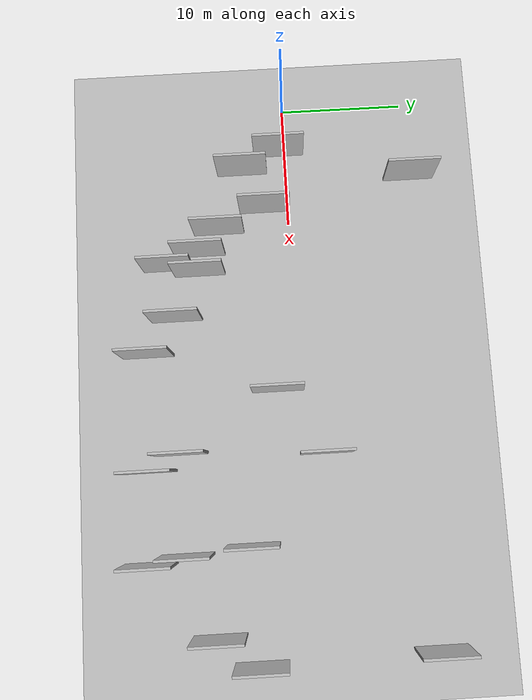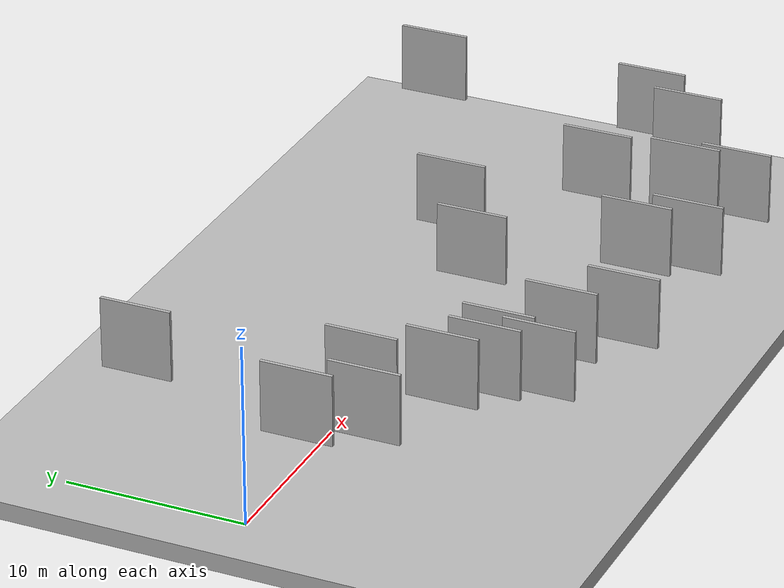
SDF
<?xml version="1.0" encoding="utf-8"?>

<sdf version="1.6">

   <world name="default">

      <gui fullscreen="0">

         <camera name="user_camera">

            <pose>-15 0 4.57585 0 0 0</pose>

            <view_controller>orbit</view_controller>

         </camera>

      </gui>

      <scene>

         <sky>

           <clouds>

             <speed>12</speed>

           </clouds>

         </sky>

         <ambient>0.4 0.4 0.4 1</ambient>

         <background>0.7 0.7 0.7 1</background>

         <shadows>1</shadows>

      </scene>

      <gravity>0 0 -9.8066</gravity>

      <magnetic_field>6e-06 2.3e-05 -4.2e-05</magnetic_field>

      <physics default="0" name="default_physics" type="ode">

         <ode>

            <solver>

               <type>quick</type>

               <iters>10</iters>

               <sor>1.0</sor>

               <use_dynamic_moi_rescaling>0</use_dynamic_moi_rescaling>

            </solver>

            <constraints>

               <cfm>0</cfm>

               <erp>0.2</erp>

               <contact_max_correcting_vel>100</contact_max_correcting_vel>

               <contact_surface_layer>0.001</contact_surface_layer>

            </constraints>

         </ode>

         <max_step_size>0.004</max_step_size>

         <real_time_factor>1</real_time_factor>

         <real_time_update_rate>250</real_time_update_rate>

      </physics>

      <light name="sun" type="directional">

         <cast_shadows>1</cast_shadows>

         <pose>0 0 10 0 0 0</pose>

         <diffuse>0.8 0.8 0.8 1</diffuse>

         <specular>0.2 0.2 0.2 1</specular>

         <attenuation>

            <range>1000</range>

            <constant>0.9</constant>

            <linear>0.01</linear>

            <quadratic>0.001</quadratic>

         </attenuation>

         <direction>-0.5 0.1 -0.9</direction>

      </light>

      <include>

         <name>ground_plane_1</name>

         <uri>model://HANNAS_ground_plane</uri>

         <pose>0 0 0  0 0 0</pose>

      </include>

      <include>

         <name>ground_plane_2</name>

         <uri>model://HANNAS_ground_plane</uri>

         <pose>100 0 0  0 0 0</pose>

      </include>

      <model name="HANNAS_wall_1">

         <static>1</static>

         <pose frame="">6.3646 -3.5503 2.5 0.000000 0.000000 1.570796</pose>

         <link name="link">

            <pose frame="">0 0 2.00 0 0 0</pose>

            <collision name="collision">

               <geometry>

                  <box>

                     <size>4.00 0.2 4.00</size>

                  </box>

               </geometry>

               <max_contacts>10</max_contacts>

               <surface>

                  <contact>

                     <ode/>

                  </contact>

                  <bounce/>

                  <friction>

                     <torsional>

                        <ode/>

                     </torsional>

                     <ode/>

                  </friction>

               </surface>

            </collision>

            <visual name="visual">

               <cast_shadows>0</cast_shadows>

               <geometry>

                  <box>

                     <size>4.00 0.2 4.00</size>

                  </box>

               </geometry>

               <material>

                  <script>

                     <uri>model://HANNAS_wall/materials/scripts</uri>

                     <uri>model://HANNAS_wall/materials/textures</uri>

                     <name>vrc/HANNAS_wall</name>

                  </script>

               </material>

            </visual>

            <self_collide>0</self_collide>

            <enable_wind>0</enable_wind>

            <kinematic>0</kinematic>

         </link>

      </model>

      <model name="HANNAS_wall_2">

         <static>1</static>

         <pose frame="">18.1929 -9.2385 2.5 0.000000 0.000000 1.570796</pose>

         <link name="link">

            <pose frame="">0 0 2.00 0 0 0</pose>

            <collision name="collision">

               <geometry>

                  <box>

                     <size>4.00 0.2 4.00</size>

                  </box>

               </geometry>

               <max_contacts>10</max_contacts>

               <surface>

                  <contact>

                     <ode/>

                  </contact>

                  <bounce/>

                  <friction>

                     <torsional>

                        <ode/>

                     </torsional>

                     <ode/>

                  </friction>

               </surface>

            </collision>

            <visual name="visual">

               <cast_shadows>0</cast_shadows>

               <geometry>

                  <box>

                     <size>4.00 0.2 4.00</size>

                  </box>

               </geometry>

               <material>

                  <script>

                     <uri>model://HANNAS_wall/materials/scripts</uri>

                     <uri>model://HANNAS_wall/materials/textures</uri>

                     <name>vrc/HANNAS_wall</name>

                  </script>

               </material>

            </visual>

            <self_collide>0</self_collide>

            <enable_wind>0</enable_wind>

            <kinematic>0</kinematic>

         </link>

      </model>

      <model name="HANNAS_wall_3">

         <static>1</static>

         <pose frame="">24.1748 -1.6012 2.5 0.000000 0.000000 1.570796</pose>

         <link name="link">

            <pose frame="">0 0 2.00 0 0 0</pose>

            <collision name="collision">

               <geometry>

                  <box>

                     <size>4.00 0.2 4.00</size>

                  </box>

               </geometry>

               <max_contacts>10</max_contacts>

               <surface>

                  <contact>

                     <ode/>

                  </contact>

                  <bounce/>

                  <friction>

                     <torsional>

                        <ode/>

                     </torsional>

                     <ode/>

                  </friction>

               </surface>

            </collision>

            <visual name="visual">

               <cast_shadows>0</cast_shadows>

               <geometry>

                  <box>

                     <size>4.00 0.2 4.00</size>

                  </box>

               </geometry>

               <material>

                  <script>

                     <uri>model://HANNAS_wall/materials/scripts</uri>

                     <uri>model://HANNAS_wall/materials/textures</uri>

                     <name>vrc/HANNAS_wall</name>

                  </script>

               </material>

            </visual>

            <self_collide>0</self_collide>

            <enable_wind>0</enable_wind>

            <kinematic>0</kinematic>

         </link>

      </model>

      <model name="HANNAS_wall_4">

         <static>1</static>

         <pose frame="">12.9888 -7.2146 2.5 0.000000 0.000000 1.570796</pose>

         <link name="link">

            <pose frame="">0 0 2.00 0 0 0</pose>

            <collision name="collision">

               <geometry>

                  <box>

                     <size>4.00 0.2 4.00</size>

                  </box>

               </geometry>

               <max_contacts>10</max_contacts>

               <surface>

                  <contact>

                     <ode/>

                  </contact>

                  <bounce/>

                  <friction>

                     <torsional>

                        <ode/>

                     </torsional>

                     <ode/>

                  </friction>

               </surface>

            </collision>

            <visual name="visual">

               <cast_shadows>0</cast_shadows>

               <geometry>

                  <box>

                     <size>4.00 0.2 4.00</size>

                  </box>

               </geometry>

               <material>

                  <script>

                     <uri>model://HANNAS_wall/materials/scripts</uri>

                     <uri>model://HANNAS_wall/materials/textures</uri>

                     <name>vrc/HANNAS_wall</name>

                  </script>

               </material>

            </visual>

            <self_collide>0</self_collide>

            <enable_wind>0</enable_wind>

            <kinematic>0</kinematic>

         </link>

      </model>

      <model name="HANNAS_wall_5">

         <static>1</static>

         <pose frame="">14.0566 -9.7447 2.5 0.000000 0.000000 1.570796</pose>

         <link name="link">

            <pose frame="">0 0 2.00 0 0 0</pose>

            <collision name="collision">

               <geometry>

                  <box>

                     <size>4.00 0.2 4.00</size>

                  </box>

               </geometry>

               <max_contacts>10</max_contacts>

               <surface>

                  <contact>

                     <ode/>

                  </contact>

                  <bounce/>

                  <friction>

                     <torsional>

                        <ode/>

                     </torsional>

                     <ode/>

                  </friction>

               </surface>

            </collision>

            <visual name="visual">

               <cast_shadows>0</cast_shadows>

               <geometry>

                  <box>

                     <size>4.00 0.2 4.00</size>

                  </box>

               </geometry>

               <material>

                  <script>

                     <uri>model://HANNAS_wall/materials/scripts</uri>

                     <uri>model://HANNAS_wall/materials/textures</uri>

                     <name>vrc/HANNAS_wall</name>

                  </script>

               </material>

            </visual>

            <self_collide>0</self_collide>

            <enable_wind>0</enable_wind>

            <kinematic>0</kinematic>

         </link>

      </model>

      <model name="HANNAS_wall_6">

         <static>1</static>

         <pose frame="">14.5924 -7.2852 2.5 0.000000 0.000000 1.570796</pose>

         <link name="link">

            <pose frame="">0 0 2.00 0 0 0</pose>

            <collision name="collision">

               <geometry>

                  <box>

                     <size>4.00 0.2 4.00</size>

                  </box>

               </geometry>

               <max_contacts>10</max_contacts>

               <surface>

                  <contact>

                     <ode/>

                  </contact>

                  <bounce/>

                  <friction>

                     <torsional>

                        <ode/>

                     </torsional>

                     <ode/>

                  </friction>

               </surface>

            </collision>

            <visual name="visual">

               <cast_shadows>0</cast_shadows>

               <geometry>

                  <box>

                     <size>4.00 0.2 4.00</size>

                  </box>

               </geometry>

               <material>

                  <script>

                     <uri>model://HANNAS_wall/materials/scripts</uri>

                     <uri>model://HANNAS_wall/materials/textures</uri>

                     <name>vrc/HANNAS_wall</name>

                  </script>

               </material>

            </visual>

            <self_collide>0</self_collide>

            <enable_wind>0</enable_wind>

            <kinematic>0</kinematic>

         </link>

      </model>

      <model name="HANNAS_wall_7">

         <static>1</static>

         <pose frame="">20.9524 -11.5685 2.5 0.000000 0.000000 1.570796</pose>

         <link name="link">

            <pose frame="">0 0 2.00 0 0 0</pose>

            <collision name="collision">

               <geometry>

                  <box>

                     <size>4.00 0.2 4.00</size>

                  </box>

               </geometry>

               <max_contacts>10</max_contacts>

               <surface>

                  <contact>

                     <ode/>

                  </contact>

                  <bounce/>

                  <friction>

                     <torsional>

                        <ode/>

                     </torsional>

                     <ode/>

                  </friction>

               </surface>

            </collision>

            <visual name="visual">

               <cast_shadows>0</cast_shadows>

               <geometry>

                  <box>

                     <size>4.00 0.2 4.00</size>

                  </box>

               </geometry>

               <material>

                  <script>

                     <uri>model://HANNAS_wall/materials/scripts</uri>

                     <uri>model://HANNAS_wall/materials/textures</uri>

                     <name>vrc/HANNAS_wall</name>

                  </script>

               </material>

            </visual>

            <self_collide>0</self_collide>

            <enable_wind>0</enable_wind>

            <kinematic>0</kinematic>

         </link>

      </model>

      <model name="HANNAS_wall_8">

         <static>1</static>

         <pose frame="">11.2541 -5.6298 2.5 0.000000 0.000000 1.570796</pose>

         <link name="link">

            <pose frame="">0 0 2.00 0 0 0</pose>

            <collision name="collision">

               <geometry>

                  <box>

                     <size>4.00 0.2 4.00</size>

                  </box>

               </geometry>

               <max_contacts>10</max_contacts>

               <surface>

                  <contact>

                     <ode/>

                  </contact>

                  <bounce/>

                  <friction>

                     <torsional>

                        <ode/>

                     </torsional>

                     <ode/>

                  </friction>

               </surface>

            </collision>

            <visual name="visual">

               <cast_shadows>0</cast_shadows>

               <geometry>

                  <box>

                     <size>4.00 0.2 4.00</size>

                  </box>

               </geometry>

               <material>

                  <script>

                     <uri>model://HANNAS_wall/materials/scripts</uri>

                     <uri>model://HANNAS_wall/materials/textures</uri>

                     <name>vrc/HANNAS_wall</name>

                  </script>

               </material>

            </visual>

            <self_collide>0</self_collide>

            <enable_wind>0</enable_wind>

            <kinematic>0</kinematic>

         </link>

      </model>

      <model name="HANNAS_wall_9">

         <static>1</static>

         <pose frame="">28.6543 -9.2042 2.5 0.000000 0.000000 1.570796</pose>

         <link name="link">

            <pose frame="">0 0 2.00 0 0 0</pose>

            <collision name="collision">

               <geometry>

                  <box>

                     <size>4.00 0.2 4.00</size>

                  </box>

               </geometry>

               <max_contacts>10</max_contacts>

               <surface>

                  <contact>

                     <ode/>

                  </contact>

                  <bounce/>

                  <friction>

                     <torsional>

                        <ode/>

                     </torsional>

                     <ode/>

                  </friction>

               </surface>

            </collision>

            <visual name="visual">

               <cast_shadows>0</cast_shadows>

               <geometry>

                  <box>

                     <size>4.00 0.2 4.00</size>

                  </box>

               </geometry>

               <material>

                  <script>

                     <uri>model://HANNAS_wall/materials/scripts</uri>

                     <uri>model://HANNAS_wall/materials/textures</uri>

                     <name>vrc/HANNAS_wall</name>

                  </script>

               </material>

            </visual>

            <self_collide>0</self_collide>

            <enable_wind>0</enable_wind>

            <kinematic>0</kinematic>

         </link>

      </model>

      <model name="HANNAS_wall_10">

         <static>1</static>

         <pose frame="">9.6110 -1.8973 2.5 0.000000 0.000000 1.570796</pose>

         <link name="link">

            <pose frame="">0 0 2.00 0 0 0</pose>

            <collision name="collision">

               <geometry>

                  <box>

                     <size>4.00 0.2 4.00</size>

                  </box>

               </geometry>

               <max_contacts>10</max_contacts>

               <surface>

                  <contact>

                     <ode/>

                  </contact>

                  <bounce/>

                  <friction>

                     <torsional>

                        <ode/>

                     </torsional>

                     <ode/>

                  </friction>

               </surface>

            </collision>

            <visual name="visual">

               <cast_shadows>0</cast_shadows>

               <geometry>

                  <box>

                     <size>4.00 0.2 4.00</size>

                  </box>

               </geometry>

               <material>

                  <script>

                     <uri>model://HANNAS_wall/materials/scripts</uri>

                     <uri>model://HANNAS_wall/materials/textures</uri>

                     <name>vrc/HANNAS_wall</name>

                  </script>

               </material>

            </visual>

            <self_collide>0</self_collide>

            <enable_wind>0</enable_wind>

            <kinematic>0</kinematic>

         </link>

      </model>

      <model name="HANNAS_wall_11">

         <static>1</static>

         <pose frame="">4.8964 -0.5349 2.5 0.000000 0.000000 1.570796</pose>

         <link name="link">

            <pose frame="">0 0 2.00 0 0 0</pose>

            <collision name="collision">

               <geometry>

                  <box>

                     <size>4.00 0.2 4.00</size>

                  </box>

               </geometry>

               <max_contacts>10</max_contacts>

               <surface>

                  <contact>

                     <ode/>

                  </contact>

                  <bounce/>

                  <friction>

                     <torsional>

                        <ode/>

                     </torsional>

                     <ode/>

                  </friction>

               </surface>

            </collision>

            <visual name="visual">

               <cast_shadows>0</cast_shadows>

               <geometry>

                  <box>

                     <size>4.00 0.2 4.00</size>

                  </box>

               </geometry>

               <material>

                  <script>

                     <uri>model://HANNAS_wall/materials/scripts</uri>

                     <uri>model://HANNAS_wall/materials/textures</uri>

                     <name>vrc/HANNAS_wall</name>

                  </script>

               </material>

            </visual>

            <self_collide>0</self_collide>

            <enable_wind>0</enable_wind>

            <kinematic>0</kinematic>

         </link>

      </model>

      <model name="HANNAS_wall_12">

         <static>1</static>

         <pose frame="">43.8986 9.3973 2.5 0.000000 0.000000 1.570796</pose>

         <link name="link">

            <pose frame="">0 0 2.00 0 0 0</pose>

            <collision name="collision">

               <geometry>

                  <box>

                     <size>4.00 0.2 4.00</size>

                  </box>

               </geometry>

               <max_contacts>10</max_contacts>

               <surface>

                  <contact>

                     <ode/>

                  </contact>

                  <bounce/>

                  <friction>

                     <torsional>

                        <ode/>

                     </torsional>

                     <ode/>

                  </friction>

               </surface>

            </collision>

            <visual name="visual">

               <cast_shadows>0</cast_shadows>

               <geometry>

                  <box>

                     <size>4.00 0.2 4.00</size>

                  </box>

               </geometry>

               <material>

                  <script>

                     <uri>model://HANNAS_wall/materials/scripts</uri>

                     <uri>model://HANNAS_wall/materials/textures</uri>

                     <name>vrc/HANNAS_wall</name>

                  </script>

               </material>

            </visual>

            <self_collide>0</self_collide>

            <enable_wind>0</enable_wind>

            <kinematic>0</kinematic>

         </link>

      </model>

      <model name="HANNAS_wall_13">

         <static>1</static>

         <pose frame="">42.1802 -6.8385 2.5 0.000000 0.000000 1.570796</pose>

         <link name="link">

            <pose frame="">0 0 2.00 0 0 0</pose>

            <collision name="collision">

               <geometry>

                  <box>

                     <size>4.00 0.2 4.00</size>

                  </box>

               </geometry>

               <max_contacts>10</max_contacts>

               <surface>

                  <contact>

                     <ode/>

                  </contact>

                  <bounce/>

                  <friction>

                     <torsional>

                        <ode/>

                     </torsional>

                     <ode/>

                  </friction>

               </surface>

            </collision>

            <visual name="visual">

               <cast_shadows>0</cast_shadows>

               <geometry>

                  <box>

                     <size>4.00 0.2 4.00</size>

                  </box>

               </geometry>

               <material>

                  <script>

                     <uri>model://HANNAS_wall/materials/scripts</uri>

                     <uri>model://HANNAS_wall/materials/textures</uri>

                     <name>vrc/HANNAS_wall</name>

                  </script>

               </material>

            </visual>

            <self_collide>0</self_collide>

            <enable_wind>0</enable_wind>

            <kinematic>0</kinematic>

         </link>

      </model>

      <model name="HANNAS_wall_14">

         <static>1</static>

         <pose frame="">29.8864 -11.6411 2.5 0.000000 0.000000 1.570796</pose>

         <link name="link">

            <pose frame="">0 0 2.00 0 0 0</pose>

            <collision name="collision">

               <geometry>

                  <box>

                     <size>4.00 0.2 4.00</size>

                  </box>

               </geometry>

               <max_contacts>10</max_contacts>

               <surface>

                  <contact>

                     <ode/>

                  </contact>

                  <bounce/>

                  <friction>

                     <torsional>

                        <ode/>

                     </torsional>

                     <ode/>

                  </friction>

               </surface>

            </collision>

            <visual name="visual">

               <cast_shadows>0</cast_shadows>

               <geometry>

                  <box>

                     <size>4.00 0.2 4.00</size>

                  </box>

               </geometry>

               <material>

                  <script>

                     <uri>model://HANNAS_wall/materials/scripts</uri>

                     <uri>model://HANNAS_wall/materials/textures</uri>

                     <name>vrc/HANNAS_wall</name>

                  </script>

               </material>

            </visual>

            <self_collide>0</self_collide>

            <enable_wind>0</enable_wind>

            <kinematic>0</kinematic>

         </link>

      </model>

      <model name="HANNAS_wall_15">

         <static>1</static>

         <pose frame="">36.7092 -11.7967 2.5 0.000000 0.000000 1.570796</pose>

         <link name="link">

            <pose frame="">0 0 2.00 0 0 0</pose>

            <collision name="collision">

               <geometry>

                  <box>

                     <size>4.00 0.2 4.00</size>

                  </box>

               </geometry>

               <max_contacts>10</max_contacts>

               <surface>

                  <contact>

                     <ode/>

                  </contact>

                  <bounce/>

                  <friction>

                     <torsional>

                        <ode/>

                     </torsional>

                     <ode/>

                  </friction>

               </surface>

            </collision>

            <visual name="visual">

               <cast_shadows>0</cast_shadows>

               <geometry>

                  <box>

                     <size>4.00 0.2 4.00</size>

                  </box>

               </geometry>

               <material>

                  <script>

                     <uri>model://HANNAS_wall/materials/scripts</uri>

                     <uri>model://HANNAS_wall/materials/textures</uri>

                     <name>vrc/HANNAS_wall</name>

                  </script>

               </material>

            </visual>

            <self_collide>0</self_collide>

            <enable_wind>0</enable_wind>

            <kinematic>0</kinematic>

         </link>

      </model>

      <model name="HANNAS_wall_16">

         <static>1</static>

         <pose frame="">35.7289 -4.0509 2.5 0.000000 0.000000 1.570796</pose>

         <link name="link">

            <pose frame="">0 0 2.00 0 0 0</pose>

            <collision name="collision">

               <geometry>

                  <box>

                     <size>4.00 0.2 4.00</size>

                  </box>

               </geometry>

               <max_contacts>10</max_contacts>

               <surface>

                  <contact>

                     <ode/>

                  </contact>

                  <bounce/>

                  <friction>

                     <torsional>

                        <ode/>

                     </torsional>

                     <ode/>

                  </friction>

               </surface>

            </collision>

            <visual name="visual">

               <cast_shadows>0</cast_shadows>

               <geometry>

                  <box>

                     <size>4.00 0.2 4.00</size>

                  </box>

               </geometry>

               <material>

                  <script>

                     <uri>model://HANNAS_wall/materials/scripts</uri>

                     <uri>model://HANNAS_wall/materials/textures</uri>

                     <name>vrc/HANNAS_wall</name>

                  </script>

               </material>

            </visual>

            <self_collide>0</self_collide>

            <enable_wind>0</enable_wind>

            <kinematic>0</kinematic>

         </link>

      </model>

      <model name="HANNAS_wall_17">

         <static>1</static>

         <pose frame="">7.4956 9.8112 2.5 0.000000 0.000000 1.570796</pose>

         <link name="link">

            <pose frame="">0 0 2.00 0 0 0</pose>

            <collision name="collision">

               <geometry>

                  <box>

                     <size>4.00 0.2 4.00</size>

                  </box>

               </geometry>

               <max_contacts>10</max_contacts>

               <surface>

                  <contact>

                     <ode/>

                  </contact>

                  <bounce/>

                  <friction>

                     <torsional>

                        <ode/>

                     </torsional>

                     <ode/>

                  </friction>

               </surface>

            </collision>

            <visual name="visual">

               <cast_shadows>0</cast_shadows>

               <geometry>

                  <box>

                     <size>4.00 0.2 4.00</size>

                  </box>

               </geometry>

               <material>

                  <script>

                     <uri>model://HANNAS_wall/materials/scripts</uri>

                     <uri>model://HANNAS_wall/materials/textures</uri>

                     <name>vrc/HANNAS_wall</name>

                  </script>

               </material>

            </visual>

            <self_collide>0</self_collide>

            <enable_wind>0</enable_wind>

            <kinematic>0</kinematic>

         </link>

      </model>

      <model name="HANNAS_wall_18">

         <static>1</static>

         <pose frame="">36.2053 -9.0167 2.5 0.000000 0.000000 1.570796</pose>

         <link name="link">

            <pose frame="">0 0 2.00 0 0 0</pose>

            <collision name="collision">

               <geometry>

                  <box>

                     <size>4.00 0.2 4.00</size>

                  </box>

               </geometry>

               <max_contacts>10</max_contacts>

               <surface>

                  <contact>

                     <ode/>

                  </contact>

                  <bounce/>

                  <friction>

                     <torsional>

                        <ode/>

                     </torsional>

                     <ode/>

                  </friction>

               </surface>

            </collision>

            <visual name="visual">

               <cast_shadows>0</cast_shadows>

               <geometry>

                  <box>

                     <size>4.00 0.2 4.00</size>

                  </box>

               </geometry>

               <material>

                  <script>

                     <uri>model://HANNAS_wall/materials/scripts</uri>

                     <uri>model://HANNAS_wall/materials/textures</uri>

                     <name>vrc/HANNAS_wall</name>

                  </script>

               </material>

            </visual>

            <self_collide>0</self_collide>

            <enable_wind>0</enable_wind>

            <kinematic>0</kinematic>

         </link>

      </model>

      <model name="HANNAS_wall_19">

         <static>1</static>

         <pose frame="">44.2664 -3.8424 2.5 0.000000 0.000000 1.570796</pose>

         <link name="link">

            <pose frame="">0 0 2.00 0 0 0</pose>

            <collision name="collision">

               <geometry>

                  <box>

                     <size>4.00 0.2 4.00</size>

                  </box>

               </geometry>

               <max_contacts>10</max_contacts>

               <surface>

                  <contact>

                     <ode/>

                  </contact>

                  <bounce/>

                  <friction>

                     <torsional>

                        <ode/>

                     </torsional>

                     <ode/>

                  </friction>

               </surface>

            </collision>

            <visual name="visual">

               <cast_shadows>0</cast_shadows>

               <geometry>

                  <box>

                     <size>4.00 0.2 4.00</size>

                  </box>

               </geometry>

               <material>

                  <script>

                     <uri>model://HANNAS_wall/materials/scripts</uri>

                     <uri>model://HANNAS_wall/materials/textures</uri>

                     <name>vrc/HANNAS_wall</name>

                  </script>

               </material>

            </visual>

            <self_collide>0</self_collide>

            <enable_wind>0</enable_wind>

            <kinematic>0</kinematic>

         </link>

      </model>

      <model name="HANNAS_wall_20">

         <static>1</static>

         <pose frame="">29.1568 1.8143 2.5 0.000000 0.000000 1.570796</pose>

         <link name="link">

            <pose frame="">0 0 2.00 0 0 0</pose>

            <collision name="collision">

               <geometry>

                  <box>

                     <size>4.00 0.2 4.00</size>

                  </box>

               </geometry>

               <max_contacts>10</max_contacts>

               <surface>

                  <contact>

                     <ode/>

                  </contact>

                  <bounce/>

                  <friction>

                     <torsional>

                        <ode/>

                     </torsional>

                     <ode/>

                  </friction>

               </surface>

            </collision>

            <visual name="visual">

               <cast_shadows>0</cast_shadows>

               <geometry>

                  <box>

                     <size>4.00 0.2 4.00</size>

                  </box>

               </geometry>

               <material>

                  <script>

                     <uri>model://HANNAS_wall/materials/scripts</uri>

                     <uri>model://HANNAS_wall/materials/textures</uri>

                     <name>vrc/HANNAS_wall</name>

                  </script>

               </material>

            </visual>

            <self_collide>0</self_collide>

            <enable_wind>0</enable_wind>

            <kinematic>0</kinematic>

         </link>

      </model>

   </world>

</sdf>

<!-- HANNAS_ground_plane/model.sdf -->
<sdf version="1.4">
<model name="HANNAS_ground_plane">
  <static>true</static>
    <link name="link">
      <collision name="collision">
        <geometry>
          <plane>
            <normal>0 0 1</normal>
            <size>1000 1000</size>
          </plane>
        </geometry>
        <surface>
          <friction>
            <ode>
              <mu>100</mu>
              <mu2>50</mu2>
            </ode>
          </friction>
        </surface>
      </collision>
      <visual name="visual">
        <cast_shadows>false</cast_shadows>
        <geometry>
          <plane>
            <normal>0 0 1</normal>
            <size>1000 1000</size>
          </plane>
        </geometry>
        <material>
          <script>
            <uri>model://HANNAS_ground_plane/materials/scripts/HANNAS_ground_plane.material</uri>
	    <uri>model://HANNAS_ground_plane/materials/textures</uri>
            <name>HANNASGroundPlane/Image</name>
          </script>
        </material>
      </visual>
    </link>
  </model>
</sdf>
